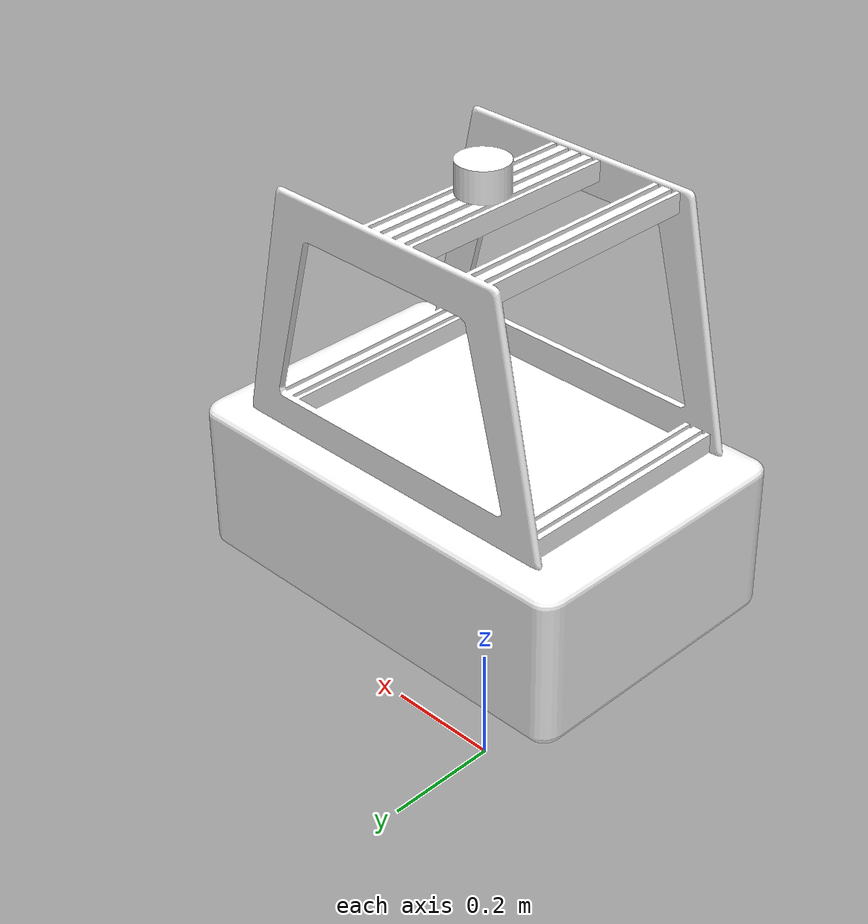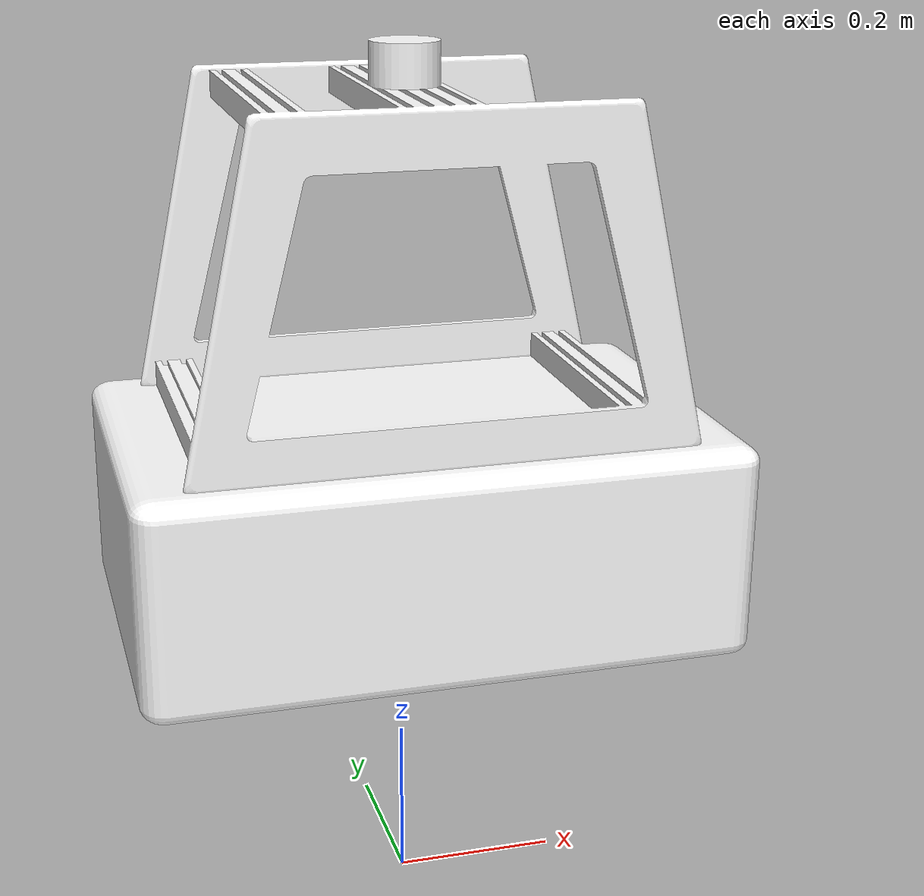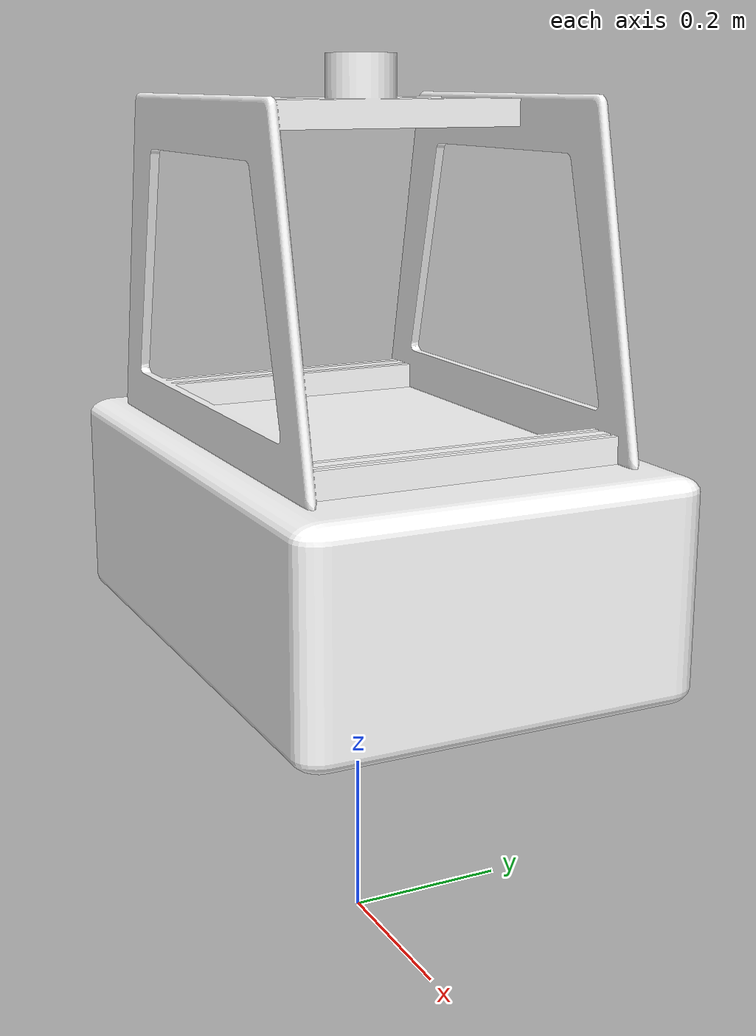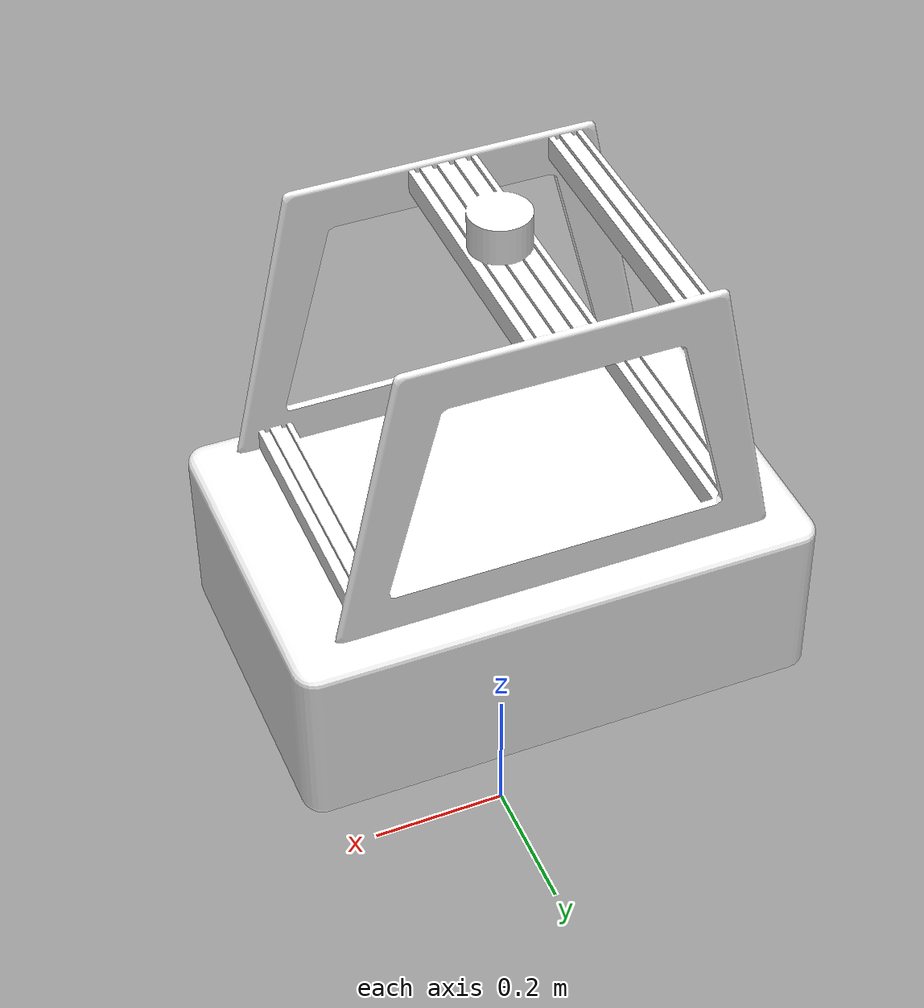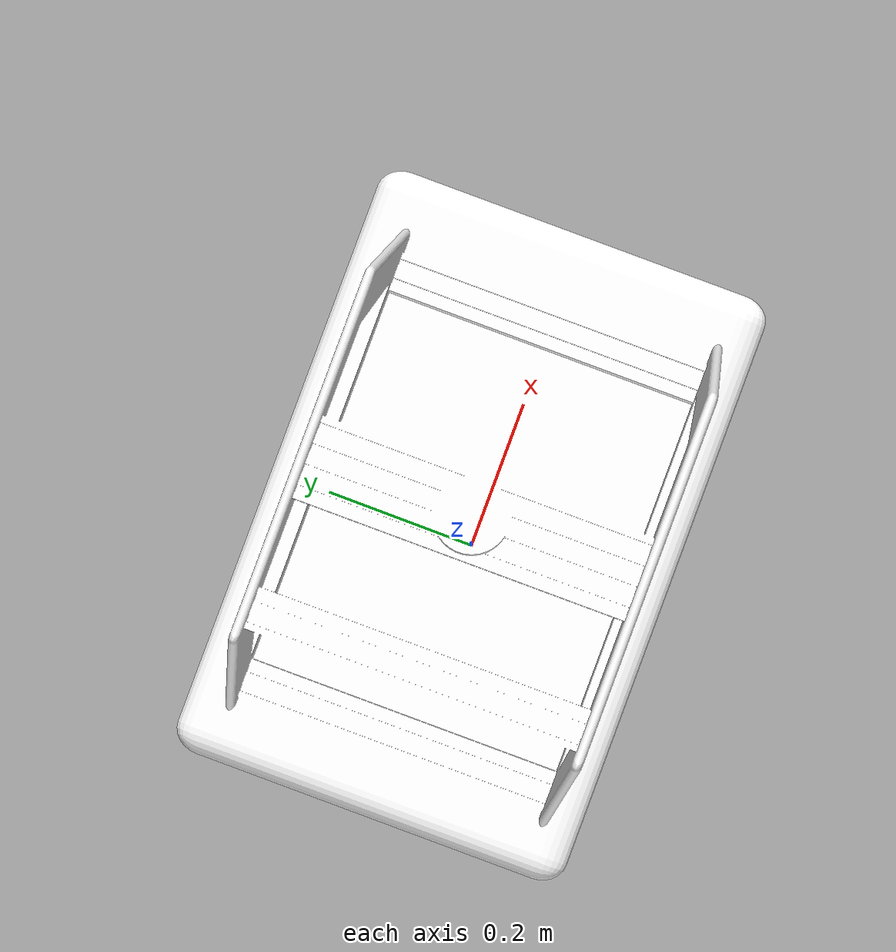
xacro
<?xml version="1.0"?>
<robot xmlns:xacro="http://www.ros.org/wiki/xacro">

  <material name="WHITE_MTL">
    <color rgba="1.0 1.0 1.0 1.0"/>
  </material>

    <link name="base_link">
        <parent link="rslidar"/>
        <visual>
            <geometry>
                <mesh filename="package://moborobot/meshes/moborobo_short.stl" scale="1 1 1"/>
            </geometry>
            <material name="WHITE_MTL"/>
            <origin xyz="0 0 0.5" rpy="0 0 0" />
        </visual>
        <collision>
            <geometry>
                <box size=".70 .470 .3"/>
            </geometry>
            <origin xyz="0 0 0.04" rpy="0 0 0" />
        </collision>
        <inertial>
            <mass value="20.0"/>
            <inertia ixx="0.51816" ixy="0" ixz="0" iyy="0.966664" iyz="0.0" izz="1.18484"/>
            <origin xyz="0 0 0.06" rpy="0 0 0" />
        </inertial>
    </link>

</robot>
